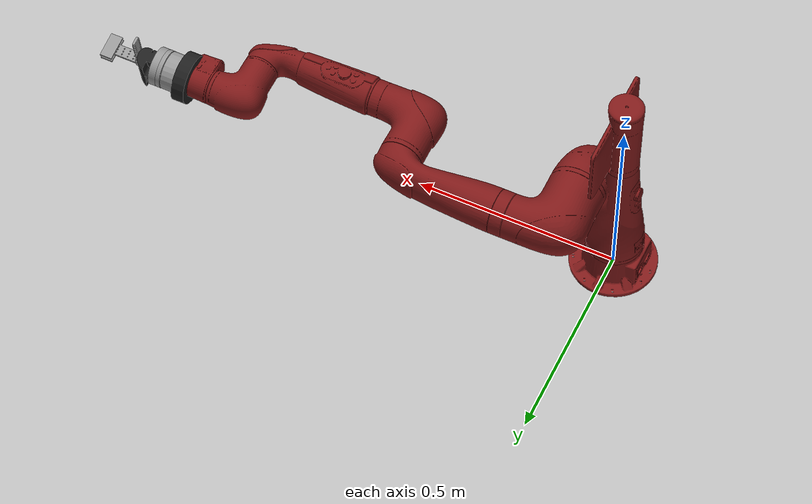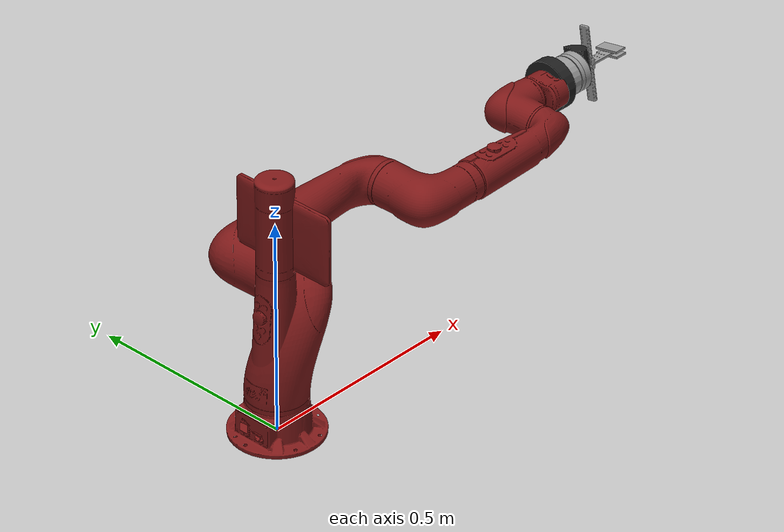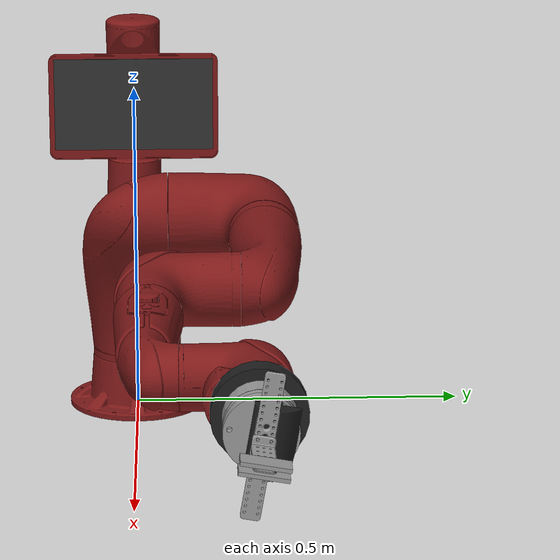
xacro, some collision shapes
<?xml version="1.0" ?>
<robot name="tossingbot" xmlns:xacro="http://www.ros.org/wiki/xacro">

  <xacro:arg name="gazebo" default="false"/>
  <xacro:arg name="pedestal" default="false"/>
  <xacro:arg name="static" default="true"/>

  <!-- Gripper Options: none, pneumatic, electric -->
  <xacro:arg name="gripper_type" default="pneumatic"/>

  <xacro:arg name="tip_slot_pos" default="1"/>
  <xacro:arg name="finger_slot_pos" default="1"/>
  <xacro:arg name="finger_pads_file" default="$(find tossingbot_gripper_description)/urdf/finger_pads_flat.xacro"/>

  <!-- Include Sawyer Base -->
  <xacro:include filename="$(find sawyer_description)/urdf/sawyer_base.urdf.xacro" />

  <xacro:if value="$(arg gazebo)">
    <xacro:include filename="$(find sawyer_description)/urdf/sawyer_base.gazebo.xacro" />
  </xacro:if>

  <!-- Include Selected Gripper -->
  <xacro:property name="g_type" value="$(arg gripper_type)" />

  <xacro:if value="${g_type == 'pneumatic'}">
    <xacro:include filename="$(find tossingbot_gripper_description)/urdf/pneumatic_gripper.urdf.xacro" />
  </xacro:if>

  <xacro:if value="${g_type == 'electric'}">
    <xacro:include filename="$(find tossingbot_gripper_description)/urdf/electric_gripper.urdf.xacro" />
  </xacro:if>

</robot>

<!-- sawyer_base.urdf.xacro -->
<robot name="sawyer" xmlns:xacro="http://www.ros.org/wiki/xacro">
  <xacro:arg name="gazebo" default="false"/>
  <xacro:arg name="pedestal" default="true"/>
  <material name="black">
    <color rgba="0 0 0 1"/>
  </material>
  <material name="darkgray">
    <color rgba=".2 .2 .2 1"/>
  </material>
  <material name="darkred">
    <color rgba=".5 .1 .1 1"/>
  </material>
  <material name="sawyer_red">
    <color rgba=".5 .1 .1 1"/>
  </material>
  <material name="sawyer_gray">
    <color rgba="0.75294 0.75294 0.75294 1"/>
  </material>
  <link name="base"/>
  <link name="torso">
    <visual>
      <origin rpy="0 0 0" xyz="0 0 0"/>
      <geometry>
        <box size="0.001 0.001 0.001"/>
      </geometry>
      <material name="darkgray">
        <color rgba=".2 .2 .2 1"/>
      </material>
    </visual>
<xacro:unless value="$(arg gazebo)">
    <inertial>
      <origin rpy="0 0 0" xyz="0.000000 0.000000 0.000000"/>
      <mass value="0.0001"/>
      <inertia ixx="1e-08" ixy="0" ixz="0" iyy="1e-08" iyz="0" izz="1e-08"/>
    </inertial>
</xacro:unless>
  </link>
<xacro:if value="$(arg pedestal)">
  <link name="pedestal">
    <visual>
      <origin rpy="1.57079632679 0 -1.57079632679" xyz="0.26 0.345 -0.91488"/>
      <geometry>
        <mesh filename="package://sawyer_description/meshes/sawyer_pv/pedestal.DAE"/>
      </geometry>
      <material name="darkgray"/>
    </visual>
    <collision>
      <origin rpy="0 0 0" xyz="-0.02 0 -0.29"/>
      <geometry>
        <cylinder length="0.62" radius="0.18"/>
      </geometry>
    </collision>
    <inertial>
      <origin rpy="0 0 0" xyz="0 0 -0.5"/>
      <mass value="60.86397744"/>
      <inertia ixx="5.0635929" ixy="0.00103417" ixz="0.80199628" iyy="6.08689388" iyz="0.00105311" izz="4.96191932"/>
    </inertial>
  </link>
  <link name="controller_box">
    <collision>
      <origin rpy="0 0 0" xyz="-0.325 0 -0.38"/>
      <geometry>
        <box size="0.22 0.4 0.53"/>
      </geometry>
    </collision>
  </link>
  <joint name="controller_box_fixed" type="fixed">
    <origin rpy="0 0 0" xyz="0.0 0.0 0.0"/>
    <parent link="base"/>
    <child link="controller_box"/>
  </joint>
  <link name="pedestal_feet">
    <collision>
      <origin rpy="0 0 0" xyz="-0.1225 0 -0.758"/>
      <geometry>
        <box size="0.77 0.7 0.31"/>
      </geometry>
    </collision>
  </link>
  <joint name="pedestal_feet_fixed" type="fixed">
    <origin rpy="0 0 0" xyz="0.0 0.0 0.0"/>
    <parent link="base"/>
    <child link="pedestal_feet"/>
  </joint>
  <joint name="pedestal_fixed" type="fixed">
    <origin rpy="0 0 0" xyz="0.0 0.0 0.0"/>
    <parent link="base"/>
    <child link="pedestal"/>
  </joint>
</xacro:if>
  <joint name="right_arm_mount" type="fixed">
    <origin rpy="0 0 0" xyz="0.0 0.0 0.0"/>
    <parent link="base"/>
    <child link="right_arm_base_link"/>
  </joint>
  <joint name="torso_t0" type="fixed">
    <origin rpy="0 0 0" xyz="0 0 0"/>
    <parent link="base"/>
    <child link="torso"/>
  </joint>
  <link name="right_arm_base_link">
    <inertial>
      <origin rpy="0 0 0" xyz="-0.0006241 -2.8025E-05 0.065404"/>
      <mass value="2.0687"/>
      <inertia ixx="0.0067599" ixy="-4.2024E-05" ixz="-6.1904E-07" iyy="0.0067877" iyz="1.5888E-05" izz="0.0074031"/>
    </inertial>
    <visual>
      <origin rpy="0 0 0" xyz="0 0 0"/>
      <geometry>
        <mesh filename="package://sawyer_description/meshes/sawyer_pv/base.DAE"/>
      </geometry>
      <material name="sawyer_red"/>
    </visual>
    <collision>
      <origin rpy="0 0 0" xyz="0 0 0.12"/>
      <geometry>
        <cylinder length="0.24" radius="0.08"/>
      </geometry>
    </collision>
  </link>
  <link name="right_l0">
    <inertial>
      <origin rpy="0 0 0" xyz="0.024366 0.010969 0.14363"/>
      <mass value="5.3213"/>
      <inertia ixx="0.053314" ixy="0.0047093" ixz="0.011734" iyy="0.057902" iyz="0.0080179" izz="0.023659"/>
    </inertial>
    <visual>
      <origin rpy="0 0 0" xyz="0 0 0"/>
      <geometry>
        <mesh filename="package://sawyer_description/meshes/sawyer_mp3/l0.DAE"/>
      </geometry>
      <material name="sawyer_red"/>
    </visual>
    <collision>
      <origin rpy="0 0 0" xyz="0.08 0 0.23"/>
      <geometry>
        <sphere radius="0.07"/>
      </geometry>
    </collision>
  </link>
  <joint name="right_j0" type="revolute">
    <origin rpy="0 0 0" xyz="0 0 0.08"/>
    <parent link="right_arm_base_link"/>
    <child link="right_l0"/>
    <axis xyz="0 0 1"/>
    <limit effort="80.0" lower="-3.0503" upper="3.0503" velocity="1.74"/>
<xacro:if value="$(arg gazebo)">
    <dynamics damping="5.0" friction="2.0"/>
</xacro:if>
  </joint>
  <link name="head">
    <inertial>
      <origin rpy="0 0 0" xyz="0.0053207 -2.6549E-05 0.1021"/>
      <mass value="1.5795"/>
      <inertia ixx="0.011833" ixy="-4.4669E-06" ixz="4.9425E-05" iyy="0.0082709" iyz="4.2124E-07" izz="0.0049661"/>
    </inertial>
    <visual>
      <origin rpy="0 0 0" xyz="0 0 0"/>
      <geometry>
        <mesh filename="package://sawyer_description/meshes/sawyer_pv/head.DAE"/>
      </geometry>
      <material name="sawyer_red"/>
    </visual>
    <collision>
      <origin rpy="0 0 0" xyz="0 0 0.08"/>
      <geometry>
        <sphere radius="0.18"/>
      </geometry>
    </collision>
  </link>
  <joint name="head_pan" type="revolute">
    <origin rpy="0 0 0" xyz="0 0 0.2965"/>
    <parent link="right_l0"/>
    <child link="head"/>
    <axis xyz="0 0 1"/>
    <limit effort="8" lower="-5.0952" upper="0.9064" velocity="1.8"/>
<xacro:if value="$(arg gazebo)">
    <dynamics damping="1.0" friction="0.5"/>
</xacro:if>
  </joint>
  <link name="right_torso_itb">
<xacro:unless value="$(arg gazebo)">
    <inertial>
      <origin rpy="0 0 0" xyz="0.000000 0.000000 0.000000"/>
      <mass value="0.0001"/>
      <inertia ixx="1e-08" ixy="0" ixz="0" iyy="1e-08" iyz="0" izz="1e-08"/>
    </inertial>
</xacro:unless>
  </link>
  <joint name="right_torso_itb" type="fixed">
    <origin rpy="0 -1.57079632679 0" xyz="-.055 0 .22"/>
    <parent link="right_l0"/>
    <child link="right_torso_itb"/>
    <axis xyz="0 0 1"/>
  </joint>
  <link name="right_l1">
    <inertial>
      <origin rpy="0 0 0" xyz="-0.0030849 -0.026811 0.092521"/>
      <mass value="4.505"/>
      <inertia ixx="0.022398" ixy="-0.00023986" ixz="-0.00029362" iyy="0.014613" iyz="-0.0060875" izz="0.017295"/>
    </inertial>
    <visual>
      <origin rpy="0 0 0" xyz="0 0 0"/>
      <geometry>
        <mesh filename="package://sawyer_description/meshes/sawyer_mp3/l1.DAE"/>
      </geometry>
      <material name="sawyer_red"/>
    </visual>
    <collision>
      <origin rpy="0 0 0" xyz="0 0 0.1225"/>
      <geometry>
        <sphere radius="0.07"/>
      </geometry>
    </collision>
  </link>
  <joint name="right_j1" type="revolute">
    <origin rpy="-1.57079632679 1.57079632679 0" xyz="0.081 0.05 0.237"/>
    <parent link="right_l0"/>
    <child link="right_l1"/>
    <axis xyz="0 0 1"/>
    <limit effort="80.0" lower="-3.8095" upper="2.2736" velocity="1.328"/>
<xacro:if value="$(arg gazebo)">
    <dynamics damping="5.0" friction="2.0"/>
</xacro:if>
  </joint>
  <link name="right_l2">
    <inertial>
      <origin rpy="0 0 0" xyz="-0.00016044 -0.014967 0.13582"/>
      <mass value="1.745"/>
      <inertia ixx="0.025506" ixy="4.4101E-06" ixz="1.4955E-05" iyy="0.0253" iyz="-0.0033204" izz="0.0034179"/>
    </inertial>
    <visual>
      <origin rpy="0 0 0" xyz="0 0 0"/>
      <geometry>
        <mesh filename="package://sawyer_description/meshes/sawyer_pv/l2.DAE"/>
      </geometry>
      <material name="sawyer_red"/>
    </visual>
    <collision>
      <origin rpy="0 0 0" xyz="0 0 0.08"/>
      <geometry>
        <cylinder length="0.34" radius="0.06"/>
      </geometry>
    </collision>
  </link>
  <joint name="right_j2" type="revolute">
    <origin rpy="1.57079632679 0 0" xyz="0 -0.14 0.1425"/>
    <parent link="right_l1"/>
    <child link="right_l2"/>
    <axis xyz="0 0 1"/>
    <limit effort="40.0" lower="-3.0426" upper="3.0426" velocity="1.957"/>
<xacro:if value="$(arg gazebo)">
    <dynamics damping="5.0" friction="2.0"/>
</xacro:if>
  </joint>
  <link name="right_l3">
    <inertial>
      <origin rpy="0 0 0" xyz="-0.0048135 -0.0281 -0.084154"/>
      <mass value="2.5097"/>
      <inertia ixx="0.01016" ixy="-9.7452E-06" ixz="0.00026624" iyy="0.0065685" iyz="0.0030316" izz="0.0069078"/>
    </inertial>
    <visual>
      <origin rpy="0 0 0" xyz="0 0 0"/>
      <geometry>
        <mesh filename="package://sawyer_description/meshes/sawyer_pv/l3.DAE"/>
      </geometry>
      <material name="sawyer_red"/>
    </visual>
    <collision>
      <origin rpy="0 0 0" xyz="0 -0.01 -0.12"/>
      <geometry>
        <sphere radius="0.06"/>
      </geometry>
    </collision>
  </link>
  <joint name="right_j3" type="revolute">
    <origin rpy="-1.57079632679 0 0" xyz="0 -0.042 0.26"/>
    <parent link="right_l2"/>
    <child link="right_l3"/>
    <axis xyz="0 0 1"/>
    <limit effort="40.0" lower="-3.0439" upper="3.0439" velocity="1.957"/>
 <xacro:if value="$(arg gazebo)">
    <dynamics damping="1.0" friction="0.5"/>
</xacro:if>
  </joint>
  <link name="right_l4">
    <inertial>
      <origin rpy="0 0 0" xyz="-0.0018844 0.0069001 0.1341"/>
      <mass value="1.1136"/>
      <inertia ixx="0.013557" ixy="1.8109E-05" ixz="0.00013523" iyy="0.013555" iyz="0.0010561" izz="0.0013658"/>
    </inertial>
    <visual>
      <origin rpy="0 0 0" xyz="0 0 0"/>
      <geometry>
        <mesh filename="package://sawyer_description/meshes/sawyer_pv/l4.DAE"/>
      </geometry>
      <material name="sawyer_red"/>
    </visual>
    <collision>
      <origin rpy="0 0 0" xyz="0 0 0.11"/>
      <geometry>
        <cylinder length="0.30" radius="0.045"/>
      </geometry>
    </collision>
  </link>
  <joint name="right_j4" type="revolute">
    <origin rpy="1.57079632679 0 0" xyz="0 -0.125 -0.1265"/>
    <parent link="right_l3"/>
    <child link="right_l4"/>
    <axis xyz="0 0 1"/>
    <limit effort="9.0" lower="-2.9761" upper="2.9761" velocity="3.485"/>
<xacro:if value="$(arg gazebo)">
    <dynamics damping="2.0" friction="1.0"/>
</xacro:if>
  </joint>
  <link name="right_arm_itb">
<xacro:unless value="$(arg gazebo)">
    <inertial>
      <origin rpy="0 0 0" xyz="0.000000 0.000000 0.000000"/>
      <mass value="0.0001"/>
      <inertia ixx="1e-08" ixy="0" ixz="0" iyy="1e-08" iyz="0" izz="1e-08"/>
    </inertial>
</xacro:unless>
  </link>
  <joint name="right_arm_itb" type="fixed">
    <origin rpy="0 -1.57079632679 0" xyz="-.055 0 .075"/>
    <parent link="right_l4"/>
    <child link="right_arm_itb"/>
    <axis xyz="0 0 1"/>
  </joint>
  <link name="right_l5">
    <inertial>
      <origin rpy="0 0 0" xyz="0.0061133 -0.023697 0.076416"/>
      <mass value="1.5625"/>
      <inertia ixx="0.0047328" ixy="0.00011526" ixz="4.6269E-05" iyy="0.0029676" iyz="-0.0011557" izz="0.0031762"/>
    </inertial>
    <visual>
      <origin rpy="0 0 0" xyz="0 0 0"/>
      <geometry>
        <mesh filename="package://sawyer_description/meshes/sawyer_pv/l5.DAE"/>
      </geometry>
      <material name="sawyer_red"/>
    </visual>
    <collision>
      <origin rpy="0 0 0" xyz="0 0 0.1"/>
      <geometry>
        <sphere radius="0.06"/>
      </geometry>
    </collision>
  </link>
  <joint name="right_j5" type="revolute">
    <origin rpy="-1.57079632679 0 0" xyz="0 0.031 0.275"/>
    <parent link="right_l4"/>
    <child link="right_l5"/>
    <axis xyz="0 0 1"/>
    <limit effort="9.0" lower="-2.9761" upper="2.9761" velocity="3.485"/>
<xacro:if value="$(arg gazebo)">
    <dynamics damping="1.0" friction="0.5"/>
</xacro:if>
  </joint>
  <link name="right_hand_camera"/>
  <joint name="right_hand_camera" type="fixed">
    <origin rpy="0 1.57079632679 0" xyz="0.039552 -0.033 0.0695"/>
    <parent link="right_l5"/>
    <child link="right_hand_camera"/>
    <axis xyz="0 0 0"/>
  </joint>
  <link name="right_wrist"/>
  <joint name="right_wrist" type="fixed">
    <origin rpy="1.57079632679 0 0" xyz="0 0 0.10541"/>
    <parent link="right_l5"/>
    <child link="right_wrist"/>
    <axis xyz="0 0 0"/>
  </joint>
  <link name="right_l6">
    <inertial>
      <origin rpy="0 0 0" xyz="-8.0726E-06 0.0085838 -0.0049566"/>
      <mass value="0.3292"/>
      <inertia ixx="0.00031105" ixy="1.4771E-06" ixz="-3.7074E-07" iyy="0.00021549" iyz="-8.4533E-06" izz="0.00035976"/>
    </inertial>
    <visual>
      <origin rpy="0 0 0" xyz="0 0 0"/>
      <geometry>
        <mesh filename="package://sawyer_description/meshes/sawyer_mp1/l6.DAE"/>
      </geometry>
      <material name="sawyer_red"/>
    </visual>
    <collision>
      <origin rpy="0 0 0" xyz="0 0.015 -0.01"/>
      <geometry>
        <cylinder length="0.05" radius="0.055"/>
      </geometry>
    </collision>
  </link>
  <joint name="right_j6" type="revolute">
    <origin rpy="-1.57079632679 -0.17453 3.1416" xyz="0 -0.11 0.1053"/>
    <parent link="right_l5"/>
    <child link="right_l6"/>
    <axis xyz="0 0 1"/>
<xacro:if value="$(arg gazebo)">
    <limit effort="9.0" lower="-3.14" upper="3.14" velocity="4.545"/>
    <dynamics damping="1.0" friction="0.5"/>
</xacro:if>
<xacro:unless value="$(arg gazebo)">
    <limit effort="9.0" lower="-4.7124" upper="4.7124" velocity="4.545"/>
</xacro:unless>
  </joint>
  <link name="right_hand">
    <collision>
      <origin rpy="0 0 0" xyz="0 0 0.02"/>
      <geometry>
        <cylinder length="0.03" radius="0.035"/>
      </geometry>
    </collision>
<xacro:if value="$(arg gazebo)">
    <inertial>
      <origin rpy="0 0 0" xyz="0 0.1 0"/>
      <mass value="0.01"/>
      <inertia ixx="0.01" ixy="0.01" ixz="0.01" iyy="0.01" iyz="0.01" izz="0.01"/>
  </inertial>
</xacro:if>
<xacro:unless value="$(arg gazebo)">
    <inertial>
      <origin rpy="0 0 0" xyz="1.0E-08 1.0E-08 1.0E-08"/>
      <mass value="1.0E-08"/>
      <inertia ixx="1.0E-08" ixy="1.0E-08" ixz="1.0E-08" iyy="1.0E-08" iyz="1.0E-08" izz="1.0E-08"/>
    </inertial>
</xacro:unless>
  </link>
  <joint name="right_hand" type="fixed">
    <origin rpy="0 0 1.570796" xyz="0 0 0.0245"/>
    <axis xyz="0 0 1"/>
    <parent link="right_l6"/>
    <child link="right_hand"/>
  </joint>
  <link name="right_l1_2">
<xacro:unless value="$(arg gazebo)">
    <inertial>
      <origin rpy="0 0 0" xyz="1.0E-08 1.0E-08 1.0E-08"/>
      <mass value="1.0E-08"/>
      <inertia ixx="1.0E-08" ixy="1.0E-08" ixz="1.0E-08" iyy="1.0E-08" iyz="1.0E-08" izz="1.0E-08"/>
    </inertial>
</xacro:unless>
    <collision>
      <origin rpy="0 0 0" xyz="0 0 0.035"/>
      <geometry>
        <cylinder length="0.14" radius="0.07"/>
      </geometry>
    </collision>
  </link>
  <joint name="right_j1_2" type="fixed">
    <origin rpy="0 0 0" xyz="0 0 0"/>
    <parent link="right_l1"/>
    <child link="right_l1_2"/>
    <axis xyz="0 0 1"/>
  </joint>
  <link name="right_l2_2">
<xacro:unless value="$(arg gazebo)">
    <inertial>
      <origin rpy="0 0 0" xyz="1.0E-08 1.0E-08 1.0E-08"/>
      <mass value="1.0E-08"/>
      <inertia ixx="1.0E-08" ixy="1.0E-08" ixz="1.0E-08" iyy="1.0E-08" iyz="1.0E-08" izz="1.0E-08"/>
    </inertial>
</xacro:unless>
    <collision>
      <origin rpy="0 0 0" xyz="0 0 0.26"/>
      <geometry>
        <sphere radius="0.06"/>
      </geometry>
    </collision>
  </link>
  <joint name="right_j2_2" type="fixed">
    <origin rpy="0 0 0" xyz="0 0 0"/>
    <parent link="right_l2"/>
    <child link="right_l2_2"/>
    <axis xyz="0 0 1"/>
  </joint>
  <link name="right_l4_2">
<xacro:unless value="$(arg gazebo)">
    <inertial>
      <origin rpy="0 0 0" xyz="1.0E-08 1.0E-08 1.0E-08"/>
      <mass value="1.0E-08"/>
      <inertia ixx="1.0E-08" ixy="1.0E-08" ixz="1.0E-08" iyy="1.0E-08" iyz="1.0E-08" izz="1.0E-08"/>
    </inertial>
</xacro:unless>
    <collision>
      <origin rpy="0 0 0" xyz="0 0.01 0.26"/>
      <geometry>
        <sphere radius="0.06"/>
      </geometry>
    </collision>
  </link>
  <joint name="right_j4_2" type="fixed">
    <origin rpy="0 0 0" xyz="0 0 0"/>
    <parent link="right_l4"/>
    <child link="right_l4_2"/>
    <axis xyz="0 0 1"/>
  </joint>
  <link name="screen">
    <visual>
      <origin rpy="0 0 0" xyz="0 0 0"/>
      <geometry>
        <box size="0.24 0.14 0.002"/>
      </geometry>
      <material name="darkgray"/>
    </visual>
    <collision>
      <origin rpy="0 0 0" xyz="0 0 0"/>
      <geometry>
        <sphere radius="0.001"/>
      </geometry>
    </collision>
<xacro:unless value="$(arg gazebo)">
    <inertial>
      <origin rpy="0 0 0" xyz="0 0 0"/>
      <mass value="0.0001"/>
      <inertia ixx="1e-08" ixy="0" ixz="0" iyy="1e-08" iyz="0" izz="1e-08"/>
    </inertial>
</xacro:unless>
  </link>
  <joint name="display_joint" type="fixed">
    <origin rpy="1.57079632679 0 1.57079632679" xyz="0.03 0.0 0.105"/>
    <parent link="head"/>
    <child link="screen"/>
  </joint>
  <link name="head_camera"/>
  <joint name="head_camera" type="fixed">
    <origin rpy="-2.1293 0 -1.57079632679" xyz="0.0228027 0 0.216572"/>
    <parent link="head"/>
    <child link="head_camera"/>
    <axis xyz="0 0 0"/>
  </joint>
</robot>

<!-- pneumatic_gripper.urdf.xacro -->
<robot name="end_effector" xmlns:xacro="http://www.ros.org/wiki/xacro">
  <xacro:arg name="gazebo" default="false"/>
  <xacro:arg name="finger_pads_file" default="$(find tossingbot_gripper_description)/urdf/finger_pads_flat.xacro"/>
  <xacro:arg name="tip_slot_pos" default="1"/>
  <xacro:arg name="finger_slot_pos" default="1"/>

  <xacro:if value="$(arg gazebo)">
    <xacro:property name="gazebo_tag" value="true" scope="local"/>
  </xacro:if>
  <xacro:unless value="$(arg gazebo)">
    <xacro:property name="gazebo_tag" value="false" scope="local"/>
  </xacro:unless>

  <xacro:include filename="$(find tossingbot_gripper_description)/urdf/pneumatic_gripper.xacro" />
  <xacro:rethink_pneumatic_gripper side="right"
                                  gazebo="${gazebo_tag}"
                                  use_ftsensor="true"
                                  tip_slot_pos="$(arg tip_slot_pos)"
                                  finger_slot_pos="$(arg finger_slot_pos)"
                                  finger_pads_file="$(arg finger_pads_file)"/>
</robot>

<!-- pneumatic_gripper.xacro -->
<robot xmlns:xacro="http://www.ros.org/wiki/xacro" name="rethink_pneumatic_gripper">

  <xacro:macro name="rethink_pneumatic_gripper" params="side gazebo use_ftsensor tip_slot_pos finger_slot_pos finger_pads_file">

    <!-- Include the selected finger pads file -->
    <xacro:include filename="${finger_pads_file}" />

    <!-- Properties -->
    <xacro:property name="end_of_arm_offset" value="-0.009" scope="local"/>
    <xacro:property name="tip_slot_offset" value="0.015" scope="local"/>
    <xacro:property name="finger_slot_offset" value="-0.008" scope="local"/>
    <xacro:property name="connector_plate_length" value="0.032" scope="local"/>
    <xacro:property name="pneumatic_gripper_base_length" value="0.0282" scope="local"/>
    <xacro:property name="ft_sensor_length" value="0.033" scope="local"/>
    <xacro:property name="adapter_top_length" value="0.013" scope="local"/>
    <xacro:property name="adapter_bottom_length" value="0.018" scope="local"/>
    <xacro:property name="finger_move_length" value="0.012" scope="local"/>
    <xacro:property name="finger_base_length" value="0.006" scope="local"/>
    <xacro:property name="finger_to_tip_length" value="${0.0726-((tip_slot_pos-1)*0.015)}" scope="local"/>
    <xacro:property name="finger_total_length" value="${finger_move_length + finger_base_length + finger_to_tip_length}" scope="local"/>

    <!-- Gripper Base -->
    <link name="${side}_gripper_base">
      <inertial>
        <mass value="1.902"/>
        <origin rpy="0 0 0" xyz="0.0028 -0.0004 0.0343"/>
        <inertia ixx="1e-08" ixy="0" ixz="0" iyy="1e-08" iyz="0" izz="1e-08"/>
      </inertial>
    </link>

    <joint name="${side}_connector_plate_base_joint" type="fixed">
       <origin xyz="0 0 0.0018" rpy="0 0 0" />
       <parent link="${side}_gripper_base"  />
       <child  link="${side}_connector_plate_base" />
    </joint>

    <link name="${side}_connector_plate_base">
      <visual>
        <origin xyz="0 0 0" rpy="${pi} 0 0" />
        <geometry>
          <mesh filename="package://tossingbot_gripper_description/meshes/STL/smart_click_adapter.STL" scale="0.001 0.001 0.001" />
        </geometry>
        <material name="TossingBot/Black"/>
      </visual>
      <collision>
        <origin xyz="0 0 0.0135" rpy="${pi} 0 0" />
        <geometry><cylinder length="${connector_plate_length}" radius="0.06"/></geometry>
      </collision>
      <inertial>
        <origin xyz="0 0 0" rpy="${pi} 0 0" />
        <mass value="0.387" />
        <inertia ixx="0.0000292897" ixy="6.1026E-08" ixz="-1.5353186E-7" iyy="0.0000296079" iyz="-3.597884E-8" izz="0.0000508198" />
      </inertial>
    </link>

    <joint name="${side}_connector_plate_mount_joint" type="fixed">
      <origin xyz="0 0 ${connector_plate_length} " rpy="0 0 0" />
      <parent link="${side}_connector_plate_base"  />
      <child  link="${side}_connector_plate_mount" />
    </joint>
    <link name="${side}_connector_plate_mount" />

    <joint name="${side}_connector_plate_ft_sensor_joint" type="fixed">
      <origin xyz="0 0 0" rpy="0 0 0" />
      <parent link="${side}_connector_plate_mount"  />
      <child  link="${side}_ft_sensor_link" />
    </joint>

    <link name="${side}_ft_sensor_link">
      <visual>
        <origin xyz="0 0 0" rpy="${pi} 0 ${pi/2}" />
        <geometry>
          <mesh filename="package://tossingbot_gripper_description/meshes/STL/ati_9105_t_delta.STL" scale="0.001 0.001 0.001"/>
        </geometry>
        <material name="TossingBot/Grey"/>
      </visual>
      <collision>
        <origin xyz="0 0 ${ft_sensor_length*0.5}" rpy="${pi} 0 ${pi/2}" />
        <geometry><cylinder length="${ft_sensor_length}" radius="0.046"/></geometry>
      </collision>
      <inertial>
        <origin rpy="${pi} 0 ${pi/2}" xyz="0 0 0"/>
        <mass value="0.919"/>
        <inertia ixx="0.0001756735" ixy="6.8322E-8" ixz="-2.7814E-8" iyy="0.0001757811" iyz="-9.2588E-8" izz="0.0002122946"/>
      </inertial>
    </link>

    <joint name="${side}_ft_sensor_adapter_top_joint" type="fixed">
      <origin xyz="0 0 ${ft_sensor_length}" rpy="0 0 0" />
      <parent link="${side}_ft_sensor_link" />
      <child  link="${side}_adapter_top" />
    </joint>

    <link name="${side}_adapter_top">
      <visual>
        <origin xyz="0 0 ${adapter_top_length}" rpy="${-pi/2} 0 0" />
        <geometry>
          <mesh filename="package://tossingbot_gripper_description/meshes/STL/ft_gripper_adapter_top.STL" scale="0.001 0.001 0.001"/>
        </geometry>
        <material name="TossingBot/Grey"/>
      </visual>
      <collision>
        <origin xyz="0 0 ${adapter_top_length*0.5}" rpy="0 0 0" />
        <geometry><cylinder length="${adapter_top_length}" radius="0.046"/></geometry>
      </collision>
      <inertial>
        <origin rpy="${-pi/2} 0 0" xyz="0.0 0.0 0.0"/>
        <mass value="0.061"/>
        <inertia ixx="0.0000418848" ixy="0" ixz="0" iyy="0.0000761051" iyz="0" izz="0.0000418848"/>
      </inertial>
    </link>

    <joint name="${side}_adapter_top_bottom_joint" type="fixed">
      <origin xyz="0 0 ${adapter_top_length}" rpy="0 0 0" />
      <parent link="${side}_adapter_top" />
      <child  link="${side}_adapter_bottom" />
    </joint>

    <link name="${side}_adapter_bottom">
      <visual>
        <origin xyz="0 0 ${adapter_bottom_length}" rpy="${-pi/2} 0 ${pi/2}" />
        <geometry>
          <mesh filename="package://tossingbot_gripper_description/meshes/STL/ft_gripper_adapter_bottom.STL" scale="0.001 0.001 0.001"/>
        </geometry>
        <material name="TossingBot/Grey"/>
      </visual>
      <collision>
        <origin xyz="0 0 ${adapter_bottom_length*0.5}" rpy="0 0 ${pi/2}" />
        <geometry><cylinder length="${adapter_bottom_length}" radius="0.046"/></geometry>
      </collision>
      <inertial>
        <origin rpy="${-pi/2} 0 ${pi/2}" xyz="0.0 0.0 0.0"/>
        <mass value="0.098"/>
        <inertia ixx="0.0000721906" ixy="0" ixz="0" iyy="0.0001202265" iyz="0" izz="0.0000723151"/>
      </inertial>
    </link>

    <joint name="${side}_pneumatic_base_joint" type="fixed">
      <origin rpy="0 0 0" xyz="0 0 ${adapter_bottom_length}"/>
      <parent link="${side}_adapter_bottom"/>
      <child link="${side}_pneumatic_gripper_base"/>
    </joint>

    <link name="${side}_pneumatic_gripper_base">
      <visual>
        <origin rpy="${pi/2} 0 0" xyz="0 0 0"/>
        <geometry>
          <mesh filename="package://tossingbot_gripper_description/meshes/STL/sz_16_base.STL" scale="0.001 0.001 0.001"/>
        </geometry>
        <material name="TossingBot/DarkGrey"/>
      </visual>
      <collision>
        <origin rpy="0 0 0" xyz="-0.012 0 0.0196"/>
        <geometry><box size="0.056 0.0871 0.0392"/></geometry>
      </collision>
      <inertial>
        <origin rpy="${pi/2} 0 0" xyz="0.0 0.0 0.0"/>
        <mass value="0.311"/>
        <inertia ixx="0.0000330475" ixy="1.31E-8" ixz="0" iyy="0.0000176978" iyz="0" izz="0.0000203961"/>
      </inertial>
    </link>

    <joint name="${side}_pneumatic_cover_joint" type="fixed">
      <origin rpy="0 0 0" xyz="0 0 ${adapter_bottom_length}"/>
      <parent link="${side}_adapter_bottom"/>
      <child link="${side}_pneumatic_gripper_cover"/>
    </joint>

    <link name="${side}_pneumatic_gripper_cover">
      <visual>
        <origin rpy="0 0 ${pi}" xyz="0 0 0"/>
        <geometry>
          <mesh filename="package://tossingbot_gripper_description/meshes/STL/gripper_base.STL" scale="0.001 0.001 0.001"/>
        </geometry>
        <material name="TossingBot/Black"/>
      </visual>
    </link>

    <!-- Fingers -->
    <joint name="${side}_gripper_l_finger_joint" type="prismatic">
      <origin rpy="0 0 0" xyz="0 0 ${pneumatic_gripper_base_length}"/>
      <axis xyz="0 1 0"/>
      <parent link="${side}_pneumatic_gripper_base"/>
      <child link="${side}_gripper_l_finger"/>
      <limit effort="20.0" lower="0.0" upper="0.016" velocity="5.0"/>
    </joint>

    <link name="${side}_gripper_l_finger">
      <visual>
        <origin rpy="${pi/2} 0 0" xyz="0 0.0295 0"/>
        <geometry>
          <mesh filename="package://tossingbot_gripper_description/meshes/STL/sz_16_finger.STL" scale="0.001 0.001 0.001"/>
        </geometry>
        <material name="TossingBot/Grey"/>
      </visual>
      <inertial>
        <origin rpy="${pi/2} 0 0" xyz="0 0.0295 0"/>
        <mass value="0.010"/>
        <inertia ixx="0.0000013187" ixy="0" ixz="0" iyy="0.0000012511" iyz="2.8731E-7" izz="2.2756E-7"/>
      </inertial>
    </link>

    <joint name="${side}_gripper_l_finger_base_joint" type="fixed">
      <origin rpy="0 0 0" xyz="0 0 0.012"/>
      <parent link="${side}_gripper_l_finger"/>
      <child link="${side}_gripper_l_finger_base"/>
    </joint>

    <link name="${side}_gripper_l_finger_base">
      <visual>
        <origin rpy="0 0 ${pi/2}" xyz="0 0.0185 0"/>
        <geometry>
          <mesh filename="package://tossingbot_gripper_description/meshes/STL/pneumatic_finger_base.STL" scale="0.001 0.001 0.001"/>
        </geometry>
        <material name="TossingBot/Grey"/>
      </visual>
      <inertial>
        <origin rpy="0 0 ${pi/2}" xyz="0 0.0185 0"/>
        <mass value="0.029"/>
        <inertia ixx="0.00000151" ixy="-1.23E-12" ixz="0.0000025354" iyy="0.000042463" iyz="-1.23E-12" izz="0.0000433196"/>
      </inertial>
    </link>

    <joint name="${side}_gripper_l_finger_body_joint" type="fixed">
      <origin rpy="0 0 0" xyz="0 ${(finger_slot_pos-1)*0.008} 0.006"/>
      <parent link="${side}_gripper_l_finger_base"/>
      <child link="${side}_gripper_l_finger_body"/>
    </joint>

    <link name="${side}_gripper_l_finger_body">
      <visual>
        <origin rpy="0 0 ${pi/2}" xyz="0 -0.0035 0"/>
        <geometry>
          <mesh filename="package://tossingbot_gripper_description/meshes/STL/pneumatic_finger.STL" scale="0.001 0.001 0.001"/>
        </geometry>
        <material name="TossingBot/Grey"/>
      </visual>
      <inertial>
        <origin rpy="0 0 ${pi/2}" xyz="0 -0.0035 0"/>
        <mass value="0.037"/>
        <inertia ixx="0.0000683111" ixy="-1.24623E-9" ixz="0.0000038251" iyy="0.0000668321" iyz="-1.738481E-8" izz="0.0000031831"/>
      </inertial>
    </link>

    <!-- Attach the Pad (Left) -->
    <xacro:finger_pad side="${side}" finger="l" parent="${side}_gripper_l_finger_body" tip_slot_pos="${tip_slot_pos}"/>

    <!-- Right Finger (Mimic) -->
    <joint name="${side}_gripper_r_finger_joint" type="prismatic">
      <origin rpy="0 0 0" xyz="0 0 ${pneumatic_gripper_base_length}"/>
      <axis xyz="0 1 0"/>
      <parent link="${side}_pneumatic_gripper_base"/>
      <child link="${side}_gripper_r_finger"/>
      <limit effort="20.0" lower="-0.016" upper="0.0" velocity="5.0"/>
      <mimic joint="${side}_gripper_l_finger_joint" multiplier="-1.0"/>
    </joint>

    <link name="${side}_gripper_r_finger">
      <visual>
        <origin rpy="${pi/2} 0 ${pi}" xyz="0 -0.0295 0"/>
        <geometry>
          <mesh filename="package://tossingbot_gripper_description/meshes/STL/sz_16_finger.STL" scale="0.001 0.001 0.001"/>
        </geometry>
        <material name="TossingBot/Grey"/>
      </visual>
      <inertial>
        <origin rpy="${pi/2} 0 ${pi}" xyz="0 -0.0295 0"/>
        <mass value="0.010"/>
        <inertia ixx="0.0000013187" ixy="0" ixz="0" iyy="0.0000012511" iyz="2.8731E-7" izz="2.2756E-7"/>
      </inertial>
    </link>

    <joint name="${side}_gripper_r_finger_base_joint" type="fixed">
      <origin rpy="0 0 0" xyz="0 0 0.012"/>
      <parent link="${side}_gripper_r_finger"/>
      <child link="${side}_gripper_r_finger_base"/>
    </joint>

    <link name="${side}_gripper_r_finger_base">
      <visual>
        <origin rpy="0 0 ${-pi/2}" xyz="0 -0.0185 0"/>
        <geometry>
          <mesh filename="package://tossingbot_gripper_description/meshes/STL/pneumatic_finger_base.STL" scale="0.001 0.001 0.001"/>
        </geometry>
        <material name="TossingBot/Grey"/>
      </visual>
      <inertial>
        <origin rpy="0 0 ${-pi/2}" xyz="0 -0.0185 0"/>
        <mass value="0.029"/>
        <inertia ixx="0.00000151" ixy="-1.23E-12" ixz="0.0000025354" iyy="0.000042463" iyz="-1.23E-12" izz="0.0000433196"/>
      </inertial>
    </link>

    <joint name="${side}_gripper_r_finger_body_joint" type="fixed">
      <origin rpy="0 0 0" xyz="0 ${(finger_slot_pos-1)*-0.008} 0.006"/>
      <parent link="${side}_gripper_r_finger_base"/>
      <child link="${side}_gripper_r_finger_body"/>
    </joint>

    <link name="${side}_gripper_r_finger_body">
      <visual>
        <origin rpy="0 0 ${-pi/2}" xyz="0 0.0035 0"/>
        <geometry>
          <mesh filename="package://tossingbot_gripper_description/meshes/STL/pneumatic_finger.STL" scale="0.001 0.001 0.001"/>
        </geometry>
        <material name="TossingBot/Grey"/>
      </visual>
      <inertial>
        <origin rpy="0 0 ${-pi/2}" xyz="0 0.0035 0"/>
        <mass value="0.037"/>
        <inertia ixx="0.0000683111" ixy="-1.24623E-9" ixz="0.0000038251" iyy="0.0000668321" iyz="-1.738481E-8" izz="0.0000031831"/>
      </inertial>
    </link>

    <!-- Attach the Pad (Right) -->
    <xacro:finger_pad side="${side}" finger="r" parent="${side}_gripper_r_finger_body" tip_slot_pos="${tip_slot_pos}"/>

    <!-- Reference Links -->
    <joint name="${side}_gripper_base_joint" type="fixed">
      <origin rpy="0 0 0" xyz="0 0 ${end_of_arm_offset}"/>
      <parent link="${side}_hand"/>
      <child link="${side}_gripper_base"/>
    </joint>

    <joint name="${side}_gripper_tip_joint" type="fixed">
      <origin rpy="0 0 0" xyz="0 0 ${(end_of_arm_offset*-1)+connector_plate_length+ft_sensor_length+adapter_top_length+adapter_bottom_length+pneumatic_gripper_base_length+finger_total_length}"/>
      <parent link="${side}_gripper_base"/>
      <child link="${side}_gripper_tip"/>
    </joint>
    <link name="${side}_gripper_tip"/>

    <!-- Gazebo / Transmissions -->
    <xacro:if value="${gazebo}">
      <gazebo reference="${side}_connector_plate_base"><material>Gazebo/FlatBlack</material></gazebo>
      <gazebo reference="${side}_ft_sensor_link"><material>Gazebo/Grey</material></gazebo>
      <gazebo reference="${side}_pneumatic_gripper_base"><material>Gazebo/DarkGrey</material></gazebo>
      <gazebo reference="${side}_pneumatic_gripper_cover"><material>Gazebo/FlatBlack</material></gazebo>
      <gazebo reference="${side}_gripper_l_finger"><material>Gazebo/Grey</material></gazebo>
      <gazebo reference="${side}_gripper_r_finger"><material>Gazebo/Grey</material></gazebo>

      <transmission name="gripper_${side}1">
        <type>transmission_interface/SimpleTransmission</type>
        <joint name="${side}_gripper_r_finger_joint">
          <hardwareInterface>hardware_interface/EffortJointInterface</hardwareInterface>
        </joint>
        <actuator name="gripper_${side}_motor1">
          <hardwareInterface>hardware_interface/EffortJointInterface</hardwareInterface>
          <mechanicalReduction>1</mechanicalReduction>
        </actuator>
      </transmission>

      <transmission name="gripper_${side}2">
        <type>transmission_interface/SimpleTransmission</type>
        <joint name="${side}_gripper_l_finger_joint">
          <hardwareInterface>hardware_interface/EffortJointInterface</hardwareInterface>
        </joint>
        <actuator name="gripper_${side}_motor2">
          <hardwareInterface>hardware_interface/EffortJointInterface</hardwareInterface>
          <mechanicalReduction>1</mechanicalReduction>
        </actuator>
      </transmission>

      <gazebo reference="${side}_gripper_r_finger_joint">
        <implicitSpringDamper>1</implicitSpringDamper>
      </gazebo>
      <gazebo reference="${side}_gripper_l_finger_joint">
        <implicitSpringDamper>1</implicitSpringDamper>
      </gazebo>
    </xacro:if>

  </xacro:macro>
</robot>

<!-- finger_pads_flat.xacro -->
<robot xmlns:xacro="http://www.ros.org/wiki/xacro">
  <!-- Macro for the Flat Pads -->
  <xacro:macro name="finger_pad" params="side finger parent tip_slot_pos">
    <joint name="${side}_gripper_${finger}_pad_joint" type="fixed">
      <origin rpy="0 0 0" xyz="0 0 0"/>
      <parent link="${parent}"/>
      <child link="${side}_gripper_${finger}_pad"/>
    </joint>

    <link name="${side}_gripper_${finger}_pad">
      <visual>
        <xacro:if value="${finger == 'l'}">
          <!-- Back to perfect face with 0.1mm gap to stop flickering -->
          <origin rpy="0 0 ${-pi/2}" xyz="0 -0.0036 ${0.0726-((tip_slot_pos-1)*0.015)}"/>
        </xacro:if>
        <xacro:if value="${finger == 'r'}">
          <!-- Back to perfect face with 0.1mm gap to stop flickering -->
          <origin rpy="0 0 ${pi/2}" xyz="0 0.0036 ${0.0726-((tip_slot_pos-1)*0.015)}"/>
        </xacro:if>
        <geometry>
          <mesh filename="package://tossingbot_gripper_description/meshes/STL/pneumatic_finger_tip_flat.STL" scale="0.001 0.001 0.001"/>
        </geometry>
        <material name="TossingBot/Grey"/>
      </visual>
      <collision>
        <xacro:if value="${finger == 'l'}">
          <origin rpy="0 0 ${-pi/2}" xyz="0 -0.0036 ${0.0726-((tip_slot_pos-1)*0.015)}"/>
        </xacro:if>
        <xacro:if value="${finger == 'r'}">
          <origin rpy="0 0 ${pi/2}" xyz="0 0.0036 ${0.0726-((tip_slot_pos-1)*0.015)}"/>
        </xacro:if>
        <geometry>
          <mesh filename="package://tossingbot_gripper_description/meshes/STL/pneumatic_finger_tip_flat.STL" scale="0.001 0.001 0.001"/>
        </geometry>
      </collision>
      <inertial>
        <xacro:if value="${finger == 'l'}">
          <origin rpy="0 0 ${-pi/2}" xyz="0 -0.0036 ${0.0726-((tip_slot_pos-1)*0.015)}"/>
        </xacro:if>
        <xacro:if value="${finger == 'r'}">
          <origin rpy="0 0 ${pi/2}" xyz="0 0.0036 ${0.0726-((tip_slot_pos-1)*0.015)}"/>
        </xacro:if>
        <mass value="0.040"/>
        <inertia ixx="0.0000064492" ixy="0" ixz="0" iyy="0.0000019488" iyz="0" izz="0.0000057675"/>
      </inertial>
    </link>

    <gazebo reference="${side}_gripper_${finger}_pad">
      <material>Gazebo/Grey</material>
      <mu1>1000000.0</mu1>
      <mu2>1000000.0</mu2>
    </gazebo>
  </xacro:macro>
</robot>
